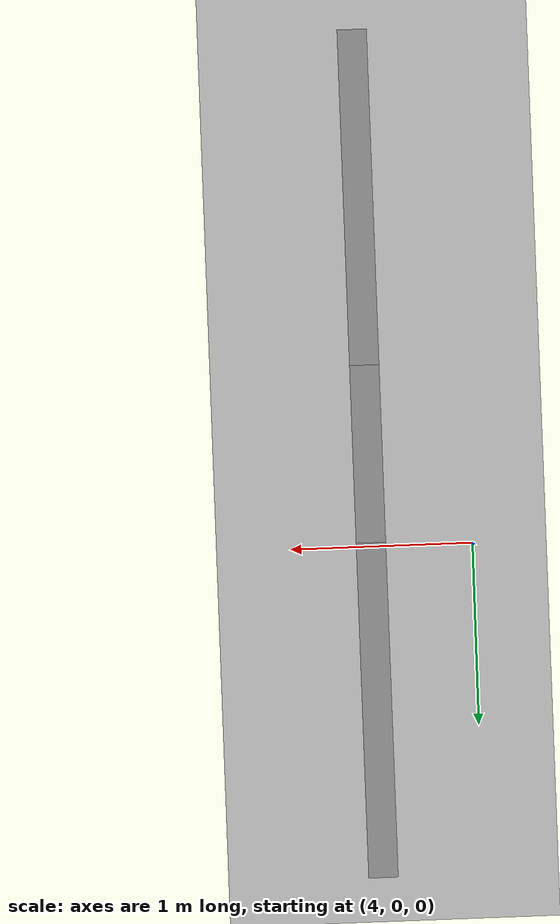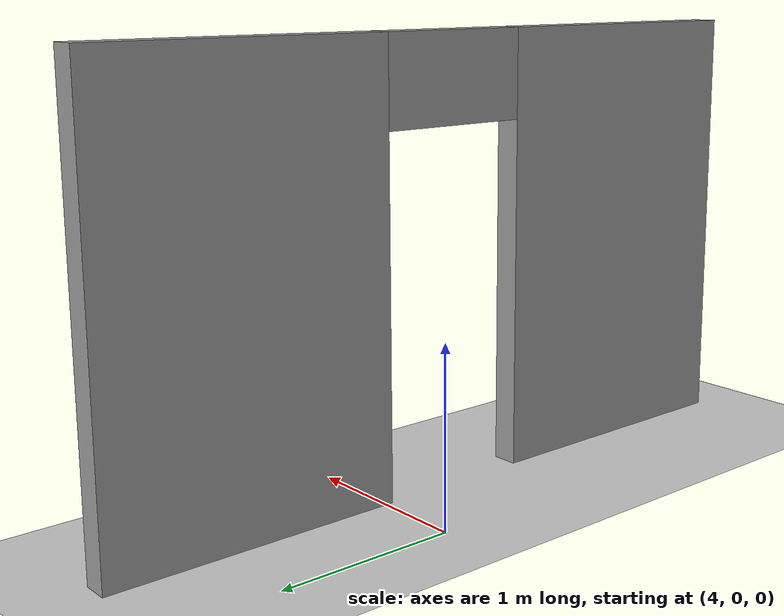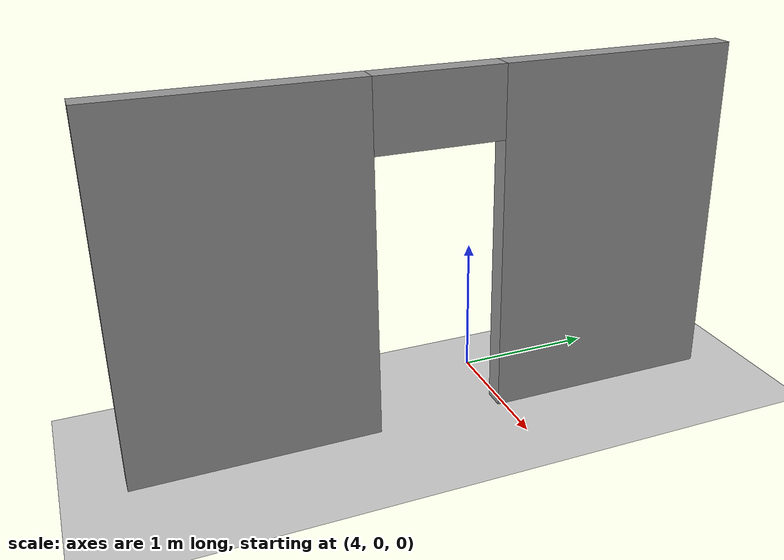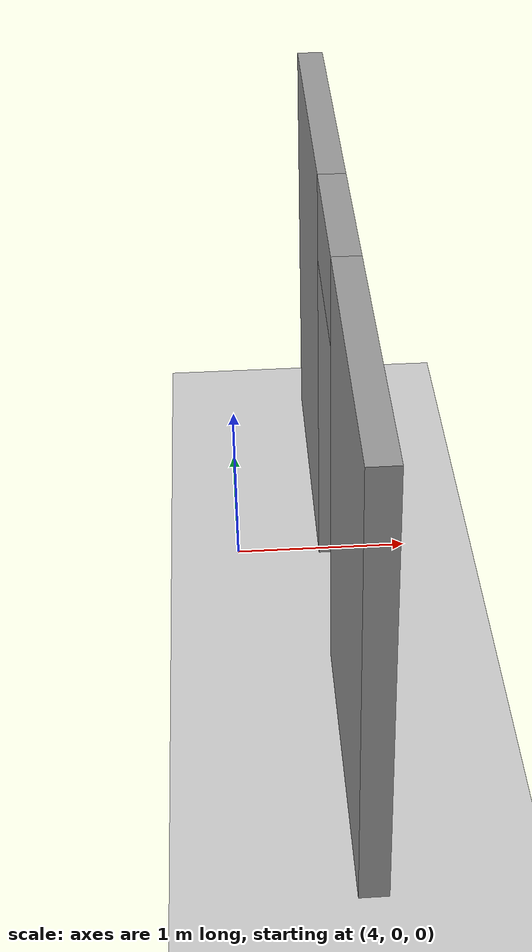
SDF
<sdf version="1.7">
 <world name="default">
  <model name="ground_plane">
   <static>1</static>
   <link name="link">
    <collision name="collision">
     <geometry><plane><normal>0 0 1</normal><size>100 100</size></plane></geometry>
     <surface>
      <contact><collide_bitmask>65535</collide_bitmask></contact>
      <friction><ode><mu>100</mu><mu2>50</mu2></ode></friction>
     </surface>
    </collision>
    <visual name="visual">
     <cast_shadows>0</cast_shadows>
     <geometry><plane><normal>0 0 1</normal><size>100 100</size></plane></geometry>
     <material>
      <script><uri>file://media/materials/scripts/gazebo.material</uri><name>Gazebo/Grey</name></script>
     </material>
    </visual>
   </link>
  </model>
  <model name="my_building_p4">
   <link name="Wall_45">
    <pose>4.57498 -3.45997 0 0 0 -1.5708</pose>
    <visual name="Wall_45_Visual_2">
     <pose>-0.003218 0 2.25 0 -0 0</pose>
     <geometry><box><size>0.9 0.15 0.5</size></box></geometry>
     <material>
      <script><uri>file://media/materials/scripts/gazebo.material</uri><name>Gazebo/Grey</name></script>
      <ambient>1 1 1 1</ambient>
      <shader type="pixel"/>
     </material>
     <meta><layer>0</layer></meta>
    </visual>
    <visual name="Wall_45_Visual_1">
     <pose>1.29839 0 1.25 0 -0 0</pose>
     <geometry><box><size>1.70322 0.15 2.5</size></box></geometry>
     <material>
      <script><uri>file://media/materials/scripts/gazebo.material</uri><name>Gazebo/Grey</name></script>
      <ambient>1 1 1 1</ambient>
      <shader type="pixel"/>
     </material>
     <meta><layer>0</layer></meta>
    </visual>
    <visual name="Wall_45_Visual_0">
     <pose>-1.30161 0 1.25 0 -0 0</pose>
     <geometry><box><size>1.69678 0.15 2.5</size></box></geometry>
     <material>
      <script><uri>file://media/materials/scripts/gazebo.material</uri><name>Gazebo/Grey</name></script>
      <ambient>1 1 1 1</ambient>
      <shader type="pixel"/>
     </material>
     <meta><layer>0</layer></meta>
    </visual>
    <collision name="Wall_45_Collision_0">
     <pose>-1.30161 0 1.25 0 -0 0</pose>
     <geometry><box><size>1.69678 0.15 2.5</size></box></geometry>
     <surface>
      <friction>
       <ode><mu>1</mu><mu2>1</mu2><fdir1>0 0 0</fdir1><slip1>0</slip1><slip2>0</slip2></ode>
       <torsional>
        <coefficient>1</coefficient>
        <patch_radius>0</patch_radius>
        <surface_radius>0</surface_radius>
        <use_patch_radius>1</use_patch_radius>
        <ode><slip>0</slip></ode>
       </torsional>
      </friction>
      <bounce><restitution_coefficient>0</restitution_coefficient><threshold>1e+06</threshold></bounce>
      <contact>
       <collide_without_contact>0</collide_without_contact>
       <collide_without_contact_bitmask>1</collide_without_contact_bitmask>
       <collide_bitmask>1</collide_bitmask>
       <ode>
        <soft_cfm>0</soft_cfm>
        <soft_erp>0.2</soft_erp>
        <kp>1e+13</kp>
        <kd>1</kd>
        <max_vel>0.01</max_vel>
        <min_depth>0</min_depth>
       </ode>
       <bullet>
        <split_impulse>1</split_impulse>
        <split_impulse_penetration_threshold>-0.01</split_impulse_penetration_threshold>
        <soft_cfm>0</soft_cfm>
        <soft_erp>0.2</soft_erp>
        <kp>1e+13</kp>
        <kd>1</kd>
       </bullet>
      </contact>
     </surface>
    </collision>
    <collision name="Wall_45_Collision_2">
     <pose>-0.003218 0 2.25 0 -0 0</pose>
     <geometry><box><size>0.9 0.15 0.5</size></box></geometry>
     <surface>
      <friction>
       <ode><mu>1</mu><mu2>1</mu2><fdir1>0 0 0</fdir1><slip1>0</slip1><slip2>0</slip2></ode>
       <torsional>
        <coefficient>1</coefficient>
        <patch_radius>0</patch_radius>
        <surface_radius>0</surface_radius>
        <use_patch_radius>1</use_patch_radius>
        <ode><slip>0</slip></ode>
       </torsional>
      </friction>
      <bounce><restitution_coefficient>0</restitution_coefficient><threshold>1e+06</threshold></bounce>
      <contact>
       <collide_without_contact>0</collide_without_contact>
       <collide_without_contact_bitmask>1</collide_without_contact_bitmask>
       <collide_bitmask>1</collide_bitmask>
       <ode>
        <soft_cfm>0</soft_cfm>
        <soft_erp>0.2</soft_erp>
        <kp>1e+13</kp>
        <kd>1</kd>
        <max_vel>0.01</max_vel>
        <min_depth>0</min_depth>
       </ode>
       <bullet>
        <split_impulse>1</split_impulse>
        <split_impulse_penetration_threshold>-0.01</split_impulse_penetration_threshold>
        <soft_cfm>0</soft_cfm>
        <soft_erp>0.2</soft_erp>
        <kp>1e+13</kp>
        <kd>1</kd>
       </bullet>
      </contact>
     </surface>
    </collision>
    <collision name="Wall_45_Collision_1">
     <pose>1.29839 0 1.25 0 -0 0</pose>
     <geometry><box><size>1.70322 0.15 2.5</size></box></geometry>
     <surface>
      <friction>
       <ode><mu>1</mu><mu2>1</mu2><fdir1>0 0 0</fdir1><slip1>0</slip1><slip2>0</slip2></ode>
       <torsional>
        <coefficient>1</coefficient>
        <patch_radius>0</patch_radius>
        <surface_radius>0</surface_radius>
        <use_patch_radius>1</use_patch_radius>
        <ode><slip>0</slip></ode>
       </torsional>
      </friction>
      <bounce><restitution_coefficient>0</restitution_coefficient><threshold>1e+06</threshold></bounce>
      <contact>
       <collide_without_contact>0</collide_without_contact>
       <collide_without_contact_bitmask>1</collide_without_contact_bitmask>
       <collide_bitmask>1</collide_bitmask>
       <ode>
        <soft_cfm>0</soft_cfm>
        <soft_erp>0.2</soft_erp>
        <kp>1e+13</kp>
        <kd>1</kd>
        <max_vel>0.01</max_vel>
        <min_depth>0</min_depth>
       </ode>
       <bullet>
        <split_impulse>1</split_impulse>
        <split_impulse_penetration_threshold>-0.01</split_impulse_penetration_threshold>
        <soft_cfm>0</soft_cfm>
        <soft_erp>0.2</soft_erp>
        <kp>1e+13</kp>
        <kd>1</kd>
       </bullet>
      </contact>
     </surface>
    </collision>
   </link>
   <static>1</static>
   <pose>-0.017657 2.964 0 0 -0 0</pose>
  </model>
 </world>
</sdf>
